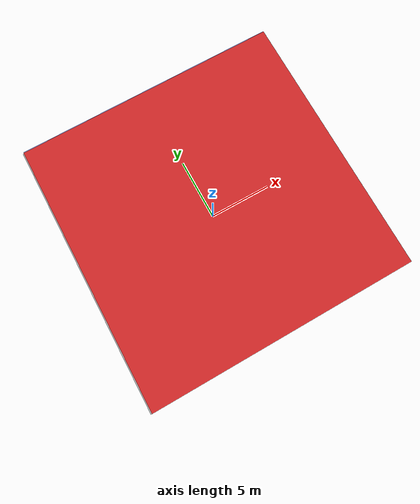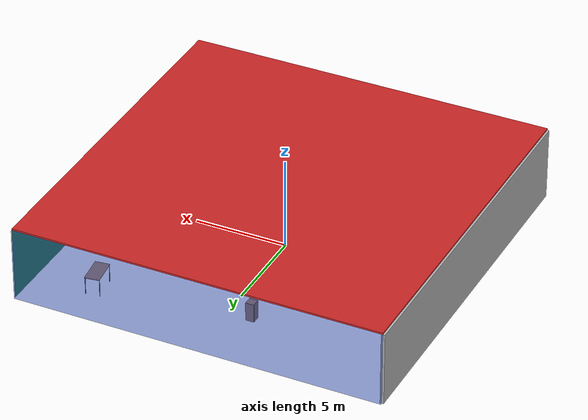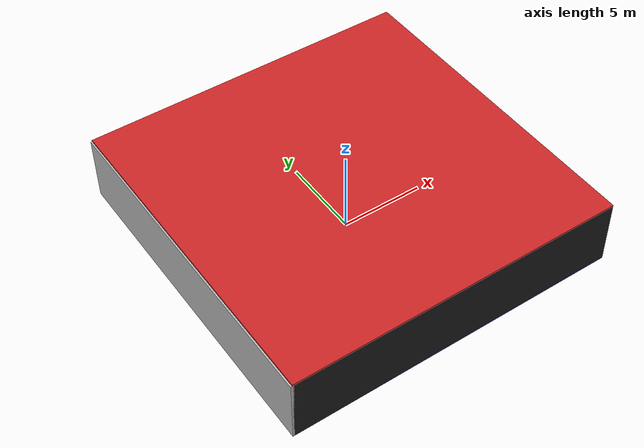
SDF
<sdf version="1.4">
 <world name="default">
  <physics type="ode">
   <max_step_size>0.001</max_step_size>
   <real_time_factor>1</real_time_factor>
   <real_time_update_rate>1000</real_time_update_rate>
   <gravity>0 0 -9.8</gravity>
  </physics>
  <scene><ambient>0.4 0.4 0.4 1</ambient><background>0.7 0.7 0.7 1</background><shadows>1</shadows></scene>
  <model name="Surrounding">
   <static>1</static>
   <link name="Ceiling">
    <collision name="Ceiling_Collision"><geometry><box><size>20 20 0.1</size></box></geometry></collision>
    <visual name="Ceiling_Visual">
     <geometry><box><size>20 20 0.1</size></box></geometry>
     <material>
      <script><uri>file://media/materials/scripts/gazebo.material</uri><name>Gazebo/RedGlow</name></script>
     </material>
    </visual>
    <pose>0 0 4.05 0 0 0</pose>
   </link>
   <link name="Wall_South">
    <collision name="Wall_South_Collision">
     <geometry><box><size>20 0 4</size></box></geometry>
     <pose>0 0 2 0 -0 0</pose>
    </collision>
    <visual name="Wall_South_Visual">
     <pose>0 0 2 0 -0 0</pose>
     <geometry><box><size>20 0 4</size></box></geometry>
     <material>
      <script><uri>file://media/materials/scripts/gazebo.material</uri><name>Gazebo/Black</name></script>
     </material>
    </visual>
    <velocity_decay><linear>0</linear><angular>0</angular></velocity_decay>
    <pose>0 -10 0 0 -0 0</pose>
   </link>
   <link name="Wall_East">
    <collision name="Wall_21_Collision">
     <geometry><box><size>20 0 4</size></box></geometry>
     <pose>0 0 2 0 -0 0</pose>
    </collision>
    <visual name="Wall_21_Visual">
     <pose>0 0 2 0 -0 0</pose>
     <geometry><box><size>20 0 4</size></box></geometry>
     <material>
      <script><uri>file://media/materials/scripts/gazebo.material</uri><name>Gazebo/GreenGlow</name></script>
     </material>
    </visual>
    <velocity_decay><linear>0</linear><angular>0</angular></velocity_decay>
    <pose>10 0 0 0 -0 1.5708</pose>
   </link>
   <link name="Wall_North">
    <collision name="Wall_22_Collision">
     <geometry><box><size>20 0.2 4</size></box></geometry>
     <pose>0 0 2 0 -0 0</pose>
    </collision>
    <visual name="Wall_22_Visual">
     <pose>0 0 2 0 -0 0</pose>
     <geometry><box><size>20 0.2 4</size></box></geometry>
     <material>
      <script><uri>file://media/materials/scripts/gazebo.material</uri><name>Gazebo/BlueTransparent</name></script>
     </material>
    </visual>
    <velocity_decay><linear>0</linear><angular>0</angular></velocity_decay>
    <pose>0 10 0 0 -0 0</pose>
   </link>
   <link name="Wall_West">
    <collision name="Wall_23_Collision">
     <geometry><box><size>20 0.2 4</size></box></geometry>
     <pose>0 0 2 0 -0 0</pose>
    </collision>
    <visual name="Wall_23_Visual">
     <pose>0 0 2 0 -0 0</pose>
     <geometry><box><size>20 0.2 4</size></box></geometry>
     <material>
      <script><uri>file://media/materials/scripts/gazebo.material</uri><name>Gazebo/Pioneer2Body</name></script>
     </material>
    </visual>
    <velocity_decay><linear>0</linear><angular>0</angular></velocity_decay>
    <pose>-10 0 0 0 0 -1.5708</pose>
   </link>
   <link name="Ground_link">
    <collision name="collision">
     <pose>0 0 .05 0 -0 0</pose>
     <geometry><box><size>20 20 0.1</size></box></geometry>
    </collision>
    <visual name="visual">
     <pose>0 0 .05 0 -0 0</pose>
     <geometry><box><size>20 20 0.1</size></box></geometry>
     <material>
      <script><uri>file://media/materials/scripts/gazebo.material</uri><name>Gazebo/BlueTransparent</name></script>
     </material>
    </visual>
   </link>
   <static>1</static>
  </model>
  <spherical_coordinates>
   <surface_model>EARTH_WGS84</surface_model>
   <latitude_deg>0</latitude_deg>
   <longitude_deg>0</longitude_deg>
   <elevation>0</elevation>
   <heading_deg>0</heading_deg>
  </spherical_coordinates>
  <light name="lightball_0" type="diffuse">
   <diffuse>0.8 0.8 0.8 1</diffuse>
   <specular>0.2 0.2 0.2 1</specular>
   <attenuation>
    <range>100</range>
    <constant>0.7</constant>
    <linear>0.01</linear>
    <quadratic>0.001</quadratic>
   </attenuation>
   <direction>-0.5 0.1 -0.9</direction>
   <pose>7.39200976307 8.29510635865 3.24374496772 0 0 0</pose>
  </light>
  <light name="lightball_1" type="diffuse">
   <diffuse>0.8 0.8 0.8 1</diffuse>
   <specular>0.2 0.2 0.2 1</specular>
   <attenuation>
    <range>100</range>
    <constant>0.7</constant>
    <linear>0.01</linear>
    <quadratic>0.001</quadratic>
   </attenuation>
   <direction>-0.5 0.1 -0.9</direction>
   <pose>-5.50018513101 -7.53995238653 1.33666119142 0 0 0</pose>
  </light>
  <light name="lightball_2" type="diffuse">
   <diffuse>0.8 0.8 0.8 1</diffuse>
   <specular>0.2 0.2 0.2 1</specular>
   <attenuation>
    <range>100</range>
    <constant>0.7</constant>
    <linear>0.01</linear>
    <quadratic>0.001</quadratic>
   </attenuation>
   <direction>-0.5 0.1 -0.9</direction>
   <pose>9.52487100109 -9.11464165535 1.66558711046 0 0 0</pose>
  </light>
  <light name="lightball_3" type="diffuse">
   <diffuse>0.8 0.8 0.8 1</diffuse>
   <specular>0.2 0.2 0.2 1</specular>
   <attenuation>
    <range>100</range>
    <constant>0.7</constant>
    <linear>0.01</linear>
    <quadratic>0.001</quadratic>
   </attenuation>
   <direction>-0.5 0.1 -0.9</direction>
   <pose>9.4658975657 -7.162757271 2.74200560425 0 0 0</pose>
  </light>
  <light name="lightball_4" type="diffuse">
   <diffuse>0.8 0.8 0.8 1</diffuse>
   <specular>0.2 0.2 0.2 1</specular>
   <attenuation>
    <range>100</range>
    <constant>0.7</constant>
    <linear>0.01</linear>
    <quadratic>0.001</quadratic>
   </attenuation>
   <direction>-0.5 0.1 -0.9</direction>
   <pose>1.83348824102 5.57565508686 1.14115445878 0 0 0</pose>
  </light>
  <light name="lightball_5" type="diffuse">
   <diffuse>0.8 0.8 0.8 1</diffuse>
   <specular>0.2 0.2 0.2 1</specular>
   <attenuation>
    <range>100</range>
    <constant>0.7</constant>
    <linear>0.01</linear>
    <quadratic>0.001</quadratic>
   </attenuation>
   <direction>-0.5 0.1 -0.9</direction>
   <pose>-1.33927959577 2.11212565031 2.7473761074 0 0 0</pose>
  </light>
  <light name="lightball_6" type="diffuse">
   <diffuse>0.8 0.8 0.8 1</diffuse>
   <specular>0.2 0.2 0.2 1</specular>
   <attenuation>
    <range>100</range>
    <constant>0.7</constant>
    <linear>0.01</linear>
    <quadratic>0.001</quadratic>
   </attenuation>
   <direction>-0.5 0.1 -0.9</direction>
   <pose>-6.534297102 2.54958033408 3.00947902164 0 0 0</pose>
  </light>
  <light name="lightball_7" type="diffuse">
   <diffuse>0.8 0.8 0.8 1</diffuse>
   <specular>0.2 0.2 0.2 1</specular>
   <attenuation>
    <range>100</range>
    <constant>0.7</constant>
    <linear>0.01</linear>
    <quadratic>0.001</quadratic>
   </attenuation>
   <direction>-0.5 0.1 -0.9</direction>
   <pose>-5.00432398901 1.51100295012 2.7457125773 0 0 0</pose>
  </light>
  <light name="lightball_8" type="diffuse">
   <diffuse>0.8 0.8 0.8 1</diffuse>
   <specular>0.2 0.2 0.2 1</specular>
   <attenuation>
    <range>100</range>
    <constant>0.7</constant>
    <linear>0.01</linear>
    <quadratic>0.001</quadratic>
   </attenuation>
   <direction>-0.5 0.1 -0.9</direction>
   <pose>4.35019515826 5.45297004329 2.76315235138 0 0 0</pose>
  </light>
  <light name="lightball_9" type="diffuse">
   <diffuse>0.8 0.8 0.8 1</diffuse>
   <specular>0.2 0.2 0.2 1</specular>
   <attenuation>
    <range>100</range>
    <constant>0.7</constant>
    <linear>0.01</linear>
    <quadratic>0.001</quadratic>
   </attenuation>
   <direction>-0.5 0.1 -0.9</direction>
   <pose>2.90156921092 4.08690165611 0.799799479335 0 0 0</pose>
  </light>
  <include><uri>model://table</uri><pose>-8.09652693939 -7.20466352213 0 0 0 0.739993492119</pose></include>
  <include>
   <uri>model://construction_cone</uri>
   <pose>-1.4616778773 -7.37097148261 0 0 0 2.12643117784</pose>
  </include>
  <include><uri>model://cabinet</uri><pose>-2.0136244912 3.74237071697 0 0 0 1.60281517463</pose></include>
  <include><uri>model://cabinet</uri><pose>-1.33899101978 6.47557509827 0 0 0 3.13571377311</pose></include>
  <include><uri>model://table</uri><pose>6.73345254801 7.45838396585 0 0 0 1.69943327447</pose></include>
 </world>
</sdf>

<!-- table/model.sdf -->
<sdf version="1.5">
  <model name="table">
    <static>true</static>
    <link name="link">
      <collision name="surface">
        <pose>0 0 1.0 0 0 0</pose>
        <geometry>
          <box>
            <size>1.5 0.8 0.03</size>
          </box>
        </geometry>
        <surface>
          <friction>
            <ode>
              <mu>0.6</mu>
              <mu2>0.6</mu2>
            </ode>
          </friction>
        </surface>
      </collision>
      <visual name="visual1">
        <pose>0 0 1.0 0 0 0</pose>
        <geometry>
          <box>
            <size>1.5 0.8 0.03</size>
          </box>
        </geometry>
        <material>
          <script>
            <uri>model://media/materials/scripts/gazebo.material</uri>
            <name>Gazebo/Wood</name>
          </script>
        </material>
      </visual>
      <collision name="front_left_leg">
        <pose>0.68 0.38 0.5 0 0 0</pose>
        <geometry>
          <cylinder>
            <radius>0.02</radius>
            <length>1.0</length>
          </cylinder>
        </geometry>
      </collision>
      <visual name="front_left_leg">
        <pose>0.68 0.38 0.5 0 0 0</pose>
        <geometry>
          <cylinder>
            <radius>0.02</radius>
            <length>1.0</length>
          </cylinder>
        </geometry>
        <material>
          <script>
            <uri>model://media/materials/scripts/gazebo.material</uri>
            <name>Gazebo/Grey</name>
          </script>
        </material>
      </visual>
      <collision name="front_right_leg">
        <pose>0.68 -0.38 0.5 0 0 0</pose>
        <geometry>
          <cylinder>
            <radius>0.02</radius>
            <length>1.0</length>
          </cylinder>
        </geometry>
      </collision>
      <visual name="front_right_leg">
        <pose>0.68 -0.38 0.5 0 0 0</pose>
        <geometry>
          <cylinder>
            <radius>0.02</radius>
            <length>1.0</length>
          </cylinder>
        </geometry>
        <material>
          <script>
            <uri>model://media/materials/scripts/gazebo.material</uri>
            <name>Gazebo/Grey</name>
          </script>
        </material>
      </visual>
      <collision name="back_right_leg">
        <pose>-0.68 -0.38 0.5 0 0 0</pose>
        <geometry>
          <cylinder>
            <radius>0.02</radius>
            <length>1.0</length>
          </cylinder>
        </geometry>
      </collision>
      <visual name="back_right_leg">
        <pose>-0.68 -0.38 0.5 0 0 0</pose>
        <geometry>
          <cylinder>
            <radius>0.02</radius>
            <length>1.0</length>
          </cylinder>
        </geometry>
        <material>
          <script>
            <uri>model://media/materials/scripts/gazebo.material</uri>
            <name>Gazebo/Grey</name>
          </script>
        </material>
      </visual>
      <collision name="back_left_leg">
        <pose>-0.68 0.38 0.5 0 0 0</pose>
        <geometry>
          <cylinder>
            <radius>0.02</radius>
            <length>1.0</length>
          </cylinder>
        </geometry>
      </collision>
      <visual name="back_left_leg">
        <pose>-0.68 0.38 0.5 0 0 0</pose>
        <geometry>
          <cylinder>
            <radius>0.02</radius>
            <length>1.0</length>
          </cylinder>
        </geometry>
        <material>
          <script>
            <uri>model://media/materials/scripts/gazebo.material</uri>
            <name>Gazebo/Grey</name>
          </script>
        </material>
      </visual>
    </link>
  </model>
</sdf>

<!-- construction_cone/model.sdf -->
<sdf version="1.5">
  <model name="Construction Cone">
    <link name="link">
      <collision name="collision">
        <geometry>
          <mesh>
            <scale>10 10 10</scale>
            <uri>file://isr-testbed/construction_cone/meshes/construction_cone.dae</uri>
          </mesh>
        </geometry>
      </collision>
      <visual name="visual">
        <geometry>
          <mesh>
            <scale>10 10 10</scale>
            <uri>file://isr-testbed/construction_cone/meshes/construction_cone.dae</uri>
          </mesh>
        </geometry>
      </visual>
    </link>
  </model>
</sdf>

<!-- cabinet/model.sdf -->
<sdf version="1.5">
  <model name="cabinet">
    <static>true</static>
    <link name="cabinet_bottom_plate">
      <inertial>
        <pose>0 0 -1 0 0 0</pose>
        <inertia>
          <ixx>2.050000</ixx>
          <ixy>0</ixy>
          <ixz>0</ixz>
          <iyy>2.050000</iyy>
          <iyz>0</iyz>
          <izz>2.050000</izz>
        </inertia>
        <mass>25.000000</mass>
      </inertial>
      <collision name="cabinet_bottom_plate_geom">
        <pose>0 0 0.010000 0 0 0</pose>
        <geometry>
          <box>
            <size>0.450000 0.450000 0.020000</size>
          </box>
        </geometry>
      </collision>
      <visual name="cabinet_bottom_plate_geom_visual">
        <pose>0 0 0.010000 0 0 0</pose>
        <geometry>
          <box>
            <size>0.450000 0.450000 0.020000</size>
          </box>
        </geometry>
        <material>
          <script>
            <uri>model://media/materials/scripts/gazebo.material</uri>
            <name>Gazebo/Wood</name>
          </script>
        </material>
      </visual>
      <collision name="cabinet_bottom_plate_geom_cabinet_back_plate">
        <pose>0.235000 0 0.510000 0 0 0</pose>
        <geometry>
          <box>
            <size>0.020000 0.450000 1.020000</size>
          </box>
        </geometry>
      </collision>
      <visual name="cabinet_bottom_plate_geom_cabinet_back_plate_visual">
        <pose>0.235000 0 0.510000 0 0 0</pose>
        <geometry>
          <box>
            <size>0.020000 0.450000 1.020000</size>
          </box>
        </geometry>
        <material>
          <script>
            <uri>model://media/materials/scripts/gazebo.material</uri>
            <name>Gazebo/Wood</name>
          </script>
        </material>
      </visual>
      <collision name="cabinet_bottom_plate_geom_cabinet_left_plate">
        <pose>0 0.235000 0.510000 0 0 0</pose>
        <geometry>
          <box>
            <size>0.450000 0.020000 1.020000</size>
          </box>
        </geometry>
      </collision>
      <visual name="cabinet_bottom_plate_geom_cabinet_left_plate_visual">
        <pose>0 0.235000 0.510000 0 0 0</pose>
        <geometry>
          <box>
            <size>0.450000 0.020000 1.020000</size>
          </box>
        </geometry>
        <material>
          <script>
            <uri>model://media/materials/scripts/gazebo.material</uri>
            <name>Gazebo/Wood</name>
          </script>
        </material>
      </visual>
      <collision name="cabinet_bottom_plate_geom_cabinet_middle_plate">
        <pose>0 0 0.510000 0 0 0</pose>
        <geometry>
          <box>
            <size>0.450000 0.450000 0.020000</size>
          </box>
        </geometry>
      </collision>
      <visual name="cabinet_bottom_plate_geom_cabinet_middle_plate_visual">
        <pose>0 0 0.510000 0 0 0</pose>
        <geometry>
          <box>
            <size>0.450000 0.450000 0.020000</size>
          </box>
        </geometry>
        <material>
          <script>
            <uri>model://media/materials/scripts/gazebo.material</uri>
            <name>Gazebo/Wood</name>
          </script>
        </material>
      </visual>
      <collision name="cabinet_bottom_plate_geom_cabinet_right_plate">
        <pose>0 -0.235000 0.510000 0 0 0</pose>
        <geometry>
          <box>
            <size>0.450000 0.020000 1.020000</size>
          </box>
        </geometry>
      </collision>
      <visual name="cabinet_bottom_plate_geom_cabinet_right_plate_visual">
        <pose>0 -0.235000 0.510000 0 0 0</pose>
        <geometry>
          <box>
            <size>0.450000 0.020000 1.020000</size>
          </box>
        </geometry>
        <material>
          <script>
            <uri>model://media/materials/scripts/gazebo.material</uri>
            <name>Gazebo/Wood</name>
          </script>
        </material>
      </visual>
      <collision name="cabinet_bottom_plate_geom_cabinet_top_plate">
        <pose>0 0 1.010000 0 0 0</pose>
        <geometry>
          <box>
            <size>0.450000 0.450000 0.020000</size>
          </box>
        </geometry>
      </collision>
      <visual name="cabinet_bottom_plate_geom_cabinet_top_plate_visual">
        <pose>0 0 1.010000 0 0 0</pose>
        <geometry>
          <box>
            <size>0.450000 0.450000 0.020000</size>
          </box>
        </geometry>
        <material>
          <script>
            <uri>model://media/materials/scripts/gazebo.material</uri>
            <name>Gazebo/Wood</name>
          </script>
        </material>
      </visual>
    </link>
  </model>
</sdf>
